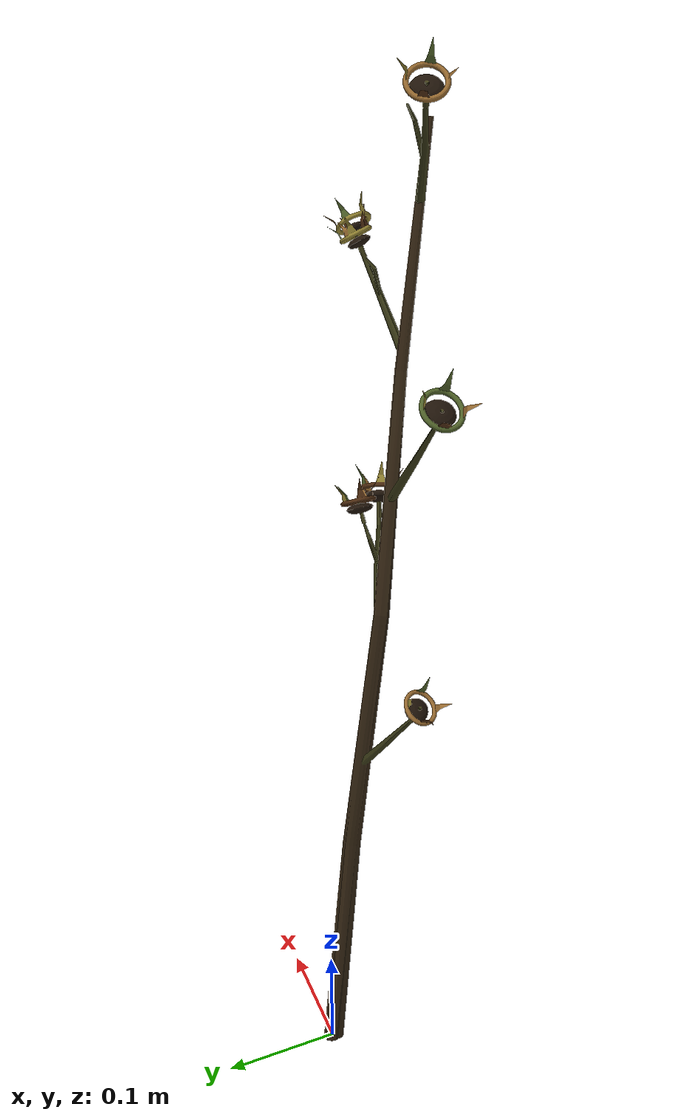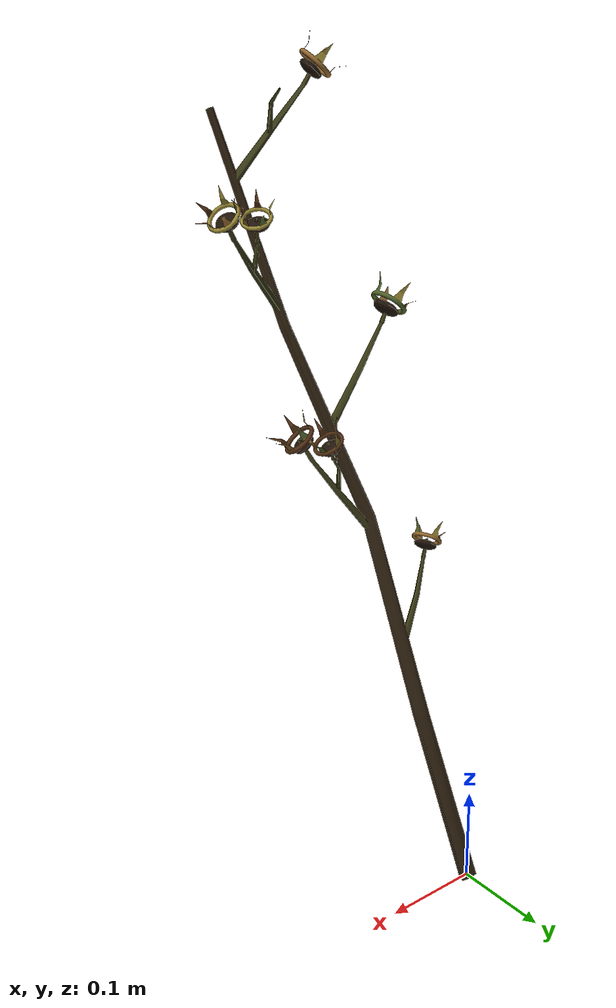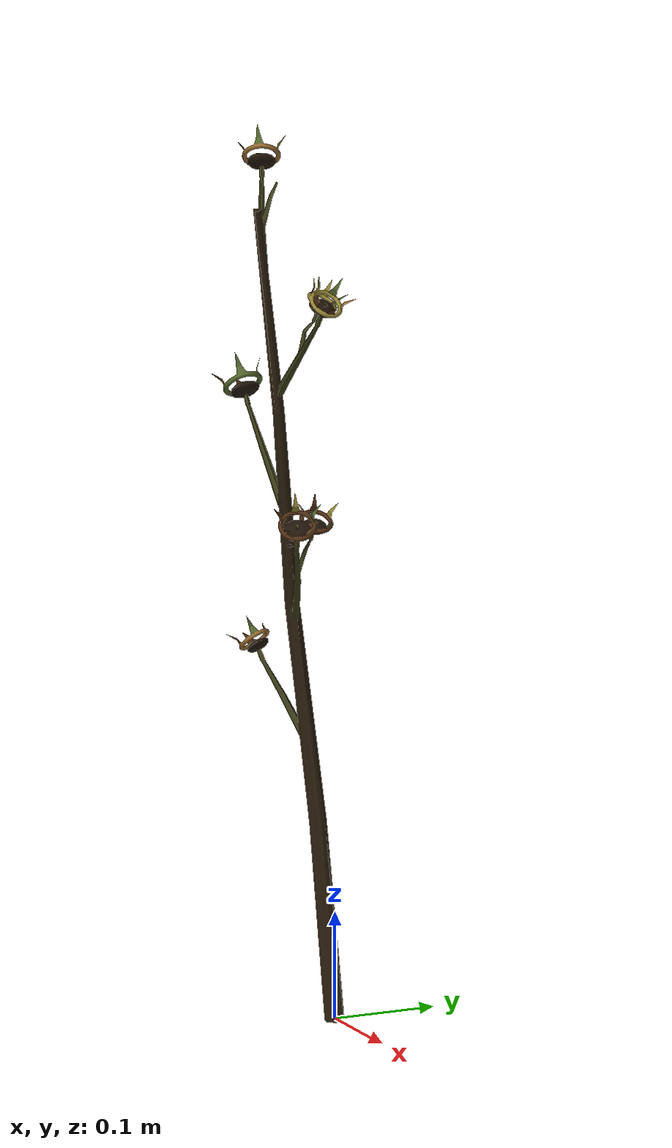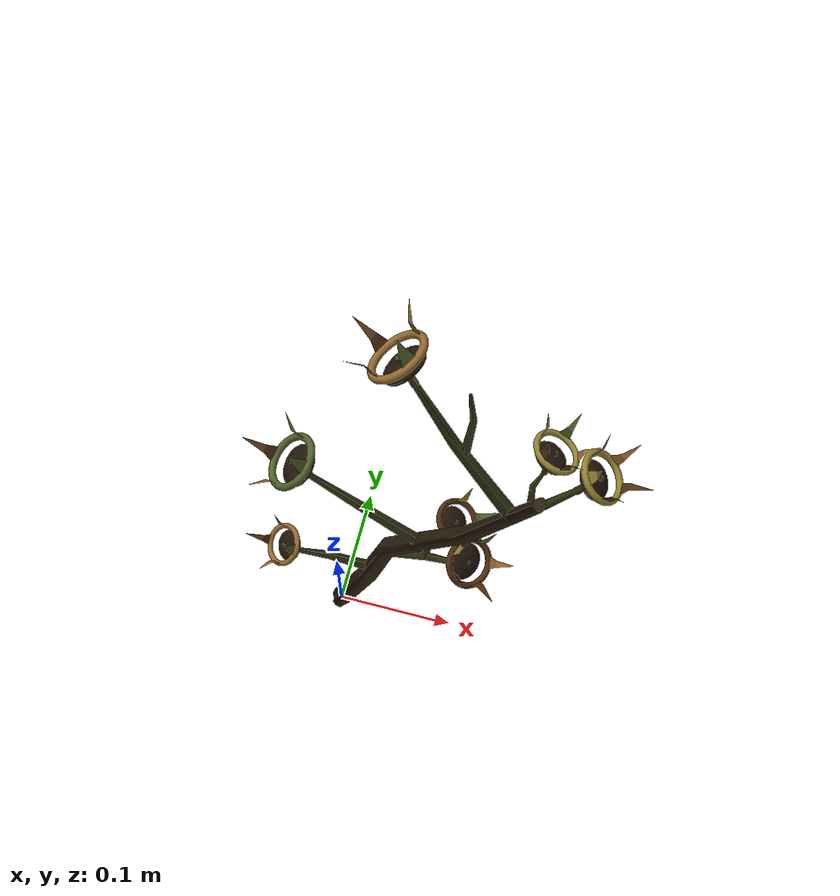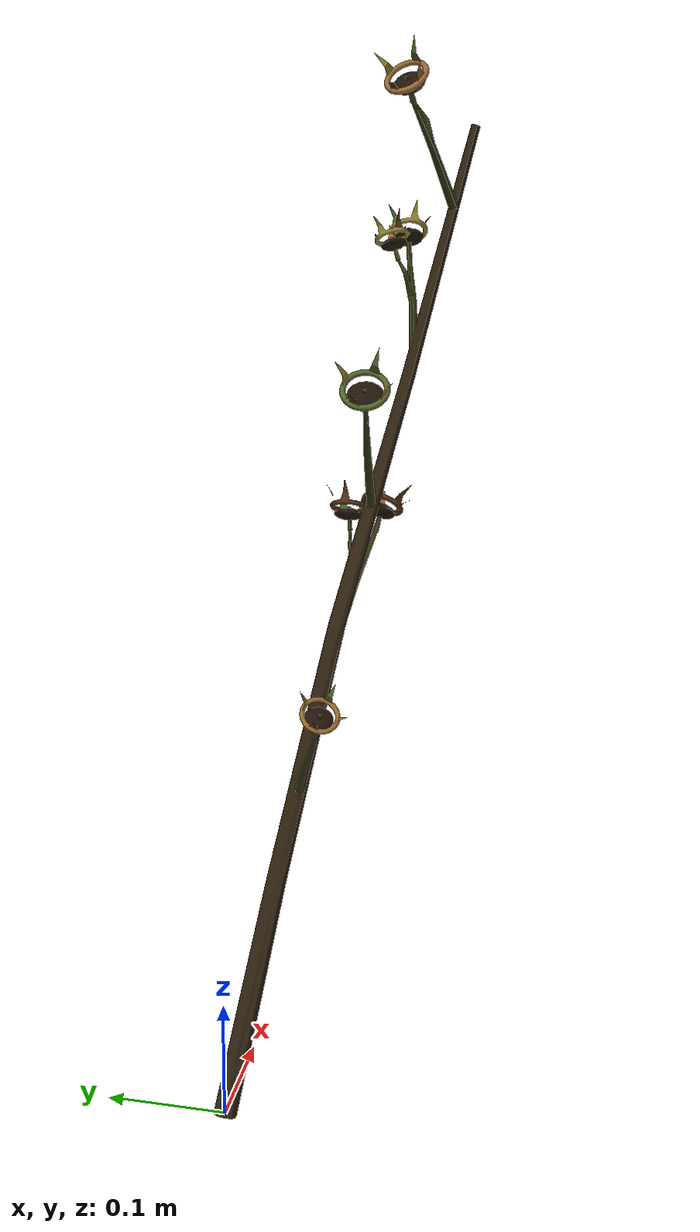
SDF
<?xml version="1.0"?>
<sdf version="1.7">
  <model name="branch_variant_E_tall_mature_01">
    <static>true</static>
    <link name="branch_variant_E_tall_mature_01_link">
      <visual name="branch_variant_E_tall_mature_01_visual">
        <geometry><mesh><uri>model://branch_variant_E_tall_mature_01/meshes/branch_variant_E_tall_mature_01.dae</uri></mesh></geometry>
      </visual>
      <collision name="branch_variant_E_tall_mature_01_stem_collision">
        <pose>0 0 0.39000 0 0 0</pose>
        <geometry><cylinder><radius>0.018</radius><length>0.78000</length></cylinder></geometry>
      </collision>
    </link>
  </model>
</sdf>
